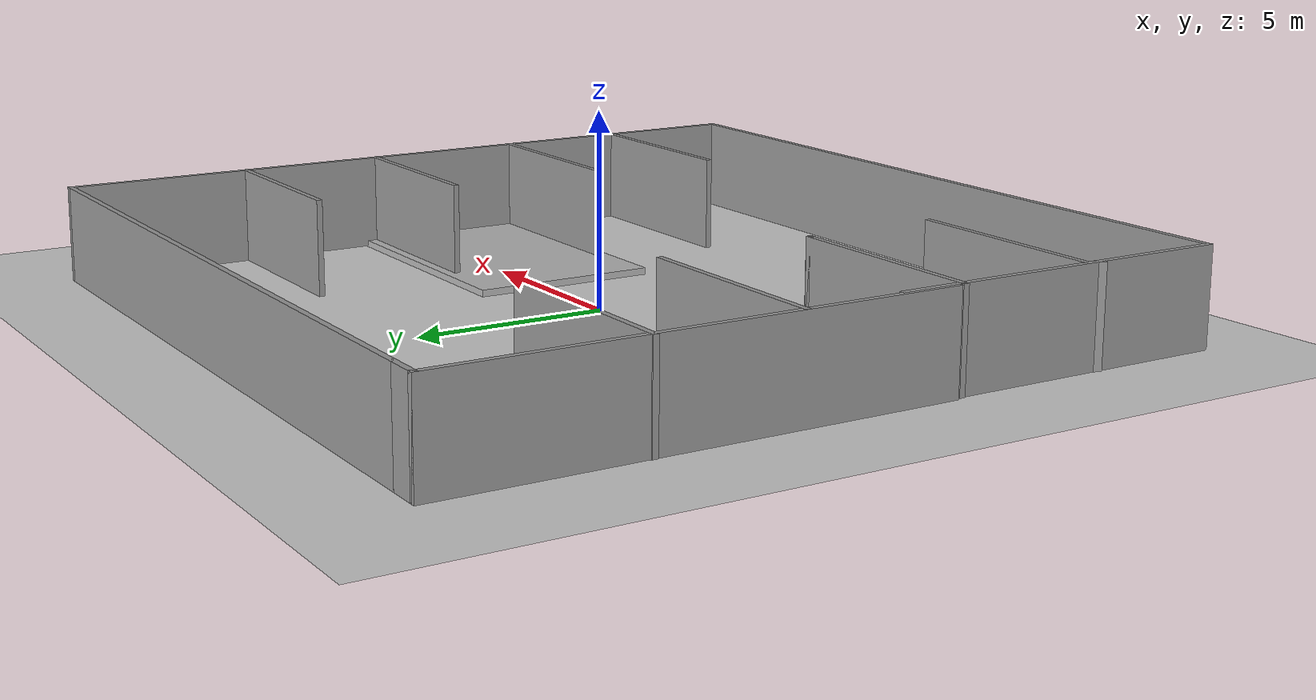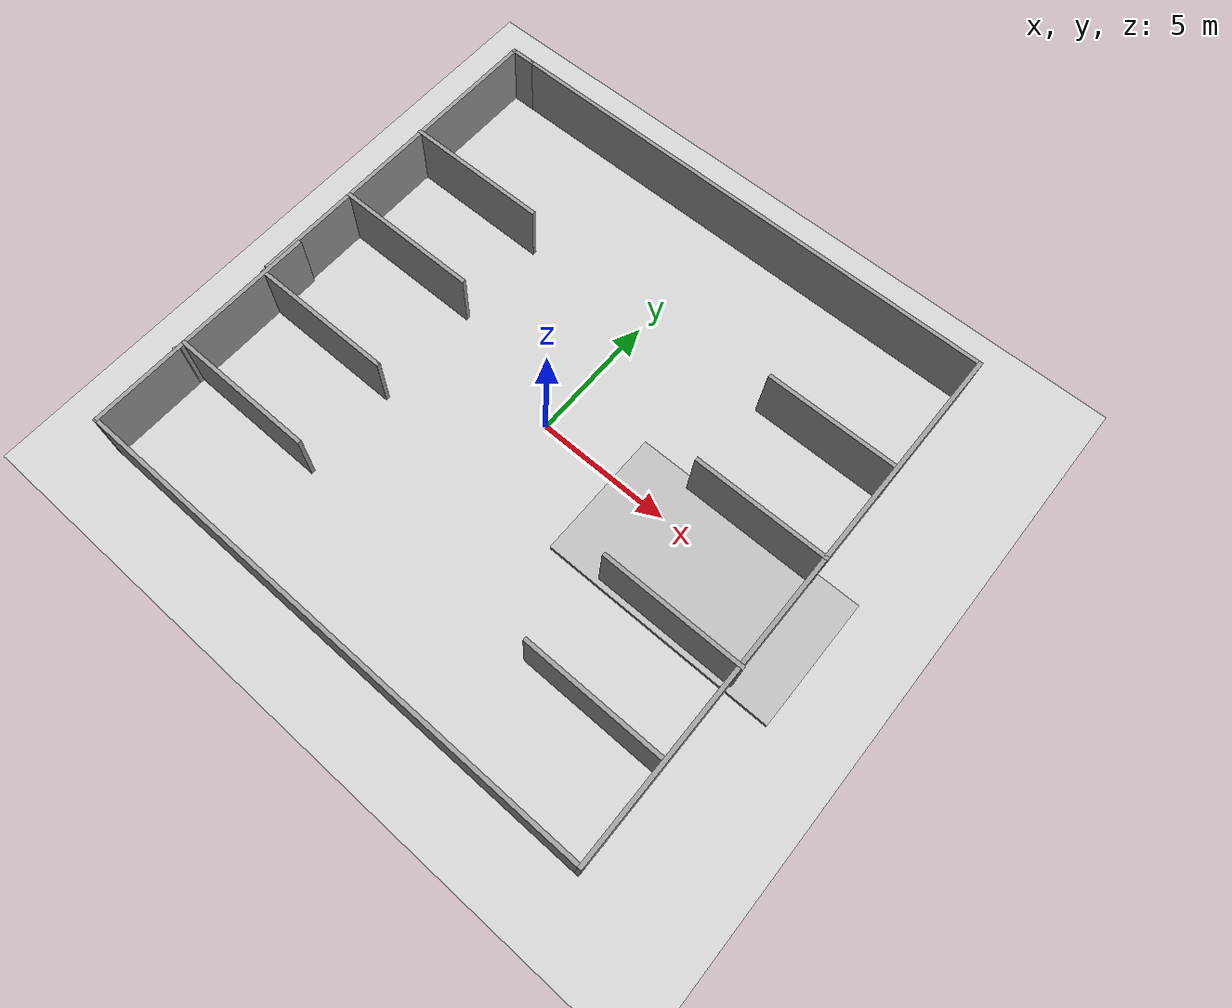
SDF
<sdf version="1.7">
 <world name="default">
  <model name="ground_plane">
   <static>1</static>
   <link name="link">
    <collision name="collision">
     <geometry><plane><normal>0 0 1</normal><size>100 100</size></plane></geometry>
     <surface><friction><ode><mu>100</mu><mu2>50</mu2></ode></friction></surface>
    </collision>
    <visual name="visual">
     <cast_shadows>0</cast_shadows>
     <geometry><plane><normal>0 0 1</normal><size>100 100</size></plane></geometry>
     <material>
      <script><uri>file://media/materials/scripts/gazebo.material</uri><name>Gazebo/Grey</name></script>
     </material>
    </visual>
   </link>
  </model>
  <light name="sun" type="directional">
   <pose>0 0 10 0 -0 0</pose>
   <diffuse>0.8 0.8 0.8 1</diffuse>
   <specular>0.2 0.2 0.2 1</specular>
   <attenuation>
    <range>1000</range>
    <constant>0.9</constant>
    <linear>0.01</linear>
    <quadratic>0.001</quadratic>
   </attenuation>
   <direction>-0.5 0.1 -0.9</direction>
   <spot><inner_angle>0</inner_angle><outer_angle>0</outer_angle><falloff>0</falloff></spot>
  </light>
  <scene><shadows>0</shadows><ambient>0.4 0.4 0.4 1</ambient><background>0.7 0.7 0.7 1</background></scene>
  <physics type="ode">
   <real_time_update_rate>1000</real_time_update_rate>
   <max_step_size>0.001</max_step_size>
   <real_time_factor>1</real_time_factor>
   <ode>
    <solver>
     <type>quick</type>
     <iters>150</iters>
     <precon_iters>0</precon_iters>
     <sor>1.4</sor>
     <use_dynamic_moi_rescaling>1</use_dynamic_moi_rescaling>
    </solver>
    <constraints>
     <cfm>1e-05</cfm>
     <erp>0.2</erp>
     <contact_max_correcting_vel>2000</contact_max_correcting_vel>
     <contact_surface_layer>0.01</contact_surface_layer>
    </constraints>
   </ode>
  </physics>
  <gravity>0 0 -9.8</gravity>
  <magnetic_field>6e-06 2.3e-05 -4.2e-05</magnetic_field>
  <atmosphere type="adiabatic"/>
  <spherical_coordinates>
   <surface_model>EARTH_WGS84</surface_model>
   <latitude_deg>0</latitude_deg>
   <longitude_deg>0</longitude_deg>
   <elevation>0</elevation>
   <heading_deg>0</heading_deg>
  </spherical_coordinates>
  <model name="otopark">
   <pose>-0.2096 0.02979 0 0 -0 0</pose>
   <link name="Wall_12">
    <collision name="Wall_12_Collision">
     <geometry><box><size>0.25 0.15 2.5</size></box></geometry>
     <pose>0 0 1.25 0 -0 0</pose>
    </collision>
    <visual name="Wall_12_Visual">
     <pose>0 0 1.25 0 -0 0</pose>
     <geometry><box><size>0.25 0.15 2.5</size></box></geometry>
     <material>
      <script><uri>file://media/materials/scripts/gazebo.material</uri><name>Gazebo/Grey</name></script>
      <ambient>0 0 0 1</ambient>
     </material>
     <meta><layer>0</layer></meta>
    </visual>
    <pose>-10.0362 -6.6877 0 0 -0 1.309</pose>
   </link>
   <link name="Wall_13">
    <collision name="Wall_13_Collision">
     <geometry><box><size>5.5 0.15 2.5</size></box></geometry>
     <pose>0 0 1.25 0 -0 0</pose>
    </collision>
    <visual name="Wall_13_Visual">
     <pose>0 0 1.25 0 -0 0</pose>
     <geometry><box><size>5.5 0.15 2.5</size></box></geometry>
     <material>
      <script><uri>file://media/materials/scripts/gazebo.material</uri><name>Gazebo/Grey</name></script>
      <ambient>1 1 1 1</ambient>
     </material>
     <meta><layer>0</layer></meta>
    </visual>
    <pose>-7.32764 -6.3638 0 0 -0 0</pose>
   </link>
   <link name="Wall_17">
    <collision name="Wall_17_Collision">
     <geometry><box><size>5.5 0.15 2.5</size></box></geometry>
     <pose>0 0 1.25 0 -0 0</pose>
    </collision>
    <visual name="Wall_17_Visual">
     <pose>0 0 1.25 0 -0 0</pose>
     <geometry><box><size>5.5 0.15 2.5</size></box></geometry>
     <material>
      <script><uri>file://media/materials/scripts/gazebo.material</uri><name>Gazebo/Grey</name></script>
      <ambient>1 1 1 1</ambient>
     </material>
     <meta><layer>0</layer></meta>
    </visual>
    <pose>-7.37417 -2.78146 0 0 -0 0</pose>
   </link>
   <link name="Wall_18">
    <collision name="Wall_18_Collision">
     <geometry><box><size>0.16 0.15 2.5</size></box></geometry>
     <pose>0 0 1.25 0 -0 0</pose>
    </collision>
    <visual name="Wall_18_Visual">
     <pose>0 0 1.25 0 -0 0</pose>
     <geometry><box><size>0.16 0.15 2.5</size></box></geometry>
     <material>
      <script><uri>file://media/materials/scripts/gazebo.material</uri><name>Gazebo/Grey</name></script>
      <ambient>0 0 0 1</ambient>
     </material>
     <meta><layer>0</layer></meta>
    </visual>
    <pose>-4.69416 -2.78146 0 0 -0 0</pose>
   </link>
   <link name="Wall_19">
    <collision name="Wall_19_Collision">
     <geometry><box><size>5.5 0.15 2.5</size></box></geometry>
     <pose>0 0 1.25 0 -0 0</pose>
    </collision>
    <visual name="Wall_19_Visual">
     <pose>0 0 1.25 0 -0 0</pose>
     <geometry><box><size>5.5 0.15 2.5</size></box></geometry>
     <material>
      <script><uri>file://media/materials/scripts/gazebo.material</uri><name>Gazebo/Grey</name></script>
      <ambient>1 1 1 1</ambient>
     </material>
     <meta><layer>0</layer></meta>
    </visual>
    <pose>-7.42069 1.35917 0 0 -0 0</pose>
   </link>
   <link name="Wall_22">
    <collision name="Wall_22_Collision">
     <geometry><box><size>5.5 0.15 2.5</size></box></geometry>
     <pose>0 0 1.25 0 -0 0</pose>
    </collision>
    <visual name="Wall_22_Visual">
     <pose>0 0 1.25 0 -0 0</pose>
     <geometry><box><size>5.5 0.15 2.5</size></box></geometry>
     <material>
      <script><uri>file://media/materials/scripts/gazebo.material</uri><name>Gazebo/Grey</name></script>
      <ambient>1 1 1 1</ambient>
     </material>
     <meta><layer>0</layer></meta>
    </visual>
    <pose>-7.46721 4.98803 0 0 -0 0</pose>
   </link>
   <link name="Wall_24">
    <collision name="Wall_24_Collision">
     <geometry><box><size>5 0.15 2.5</size></box></geometry>
     <pose>0 0 1.25 0 -0 0</pose>
    </collision>
    <visual name="Wall_24_Visual">
     <pose>0 0 1.25 0 -0 0</pose>
     <geometry><box><size>5 0.15 2.5</size></box></geometry>
     <material>
      <script><uri>file://media/materials/scripts/gazebo.material</uri><name>Gazebo/Grey</name></script>
      <ambient>1 1 1 1</ambient>
     </material>
     <meta><layer>0</layer></meta>
    </visual>
    <pose>7.67069 5.22065 0 0 -0 3.14159</pose>
   </link>
   <link name="Wall_26">
    <collision name="Wall_26_Collision">
     <geometry><box><size>5 0.15 2.5</size></box></geometry>
     <pose>0 0 1.25 0 -0 0</pose>
    </collision>
    <visual name="Wall_26_Visual">
     <pose>0 0 1.25 0 -0 0</pose>
     <geometry><box><size>5 0.15 2.5</size></box></geometry>
     <material>
      <script><uri>file://media/materials/scripts/gazebo.material</uri><name>Gazebo/Grey</name></script>
      <ambient>1 1 1 1</ambient>
     </material>
     <meta><layer>0</layer></meta>
    </visual>
    <pose>7.67069 1.35917 0 0 -0 3.14159</pose>
   </link>
   <link name="Wall_28">
    <collision name="Wall_28_Collision">
     <geometry><box><size>5.25 0.15 2.5</size></box></geometry>
     <pose>0 0 1.25 0 -0 0</pose>
    </collision>
    <visual name="Wall_28_Visual">
     <pose>0 0 1.25 0 -0 0</pose>
     <geometry><box><size>5.25 0.15 2.5</size></box></geometry>
     <material>
      <script><uri>file://media/materials/scripts/gazebo.material</uri><name>Gazebo/Grey</name></script>
      <ambient>1 1 1 1</ambient>
     </material>
     <meta><layer>0</layer></meta>
    </visual>
    <pose>7.59221 -2.92103 0 0 -0 3.14159</pose>
   </link>
   <link name="Wall_30">
    <collision name="Wall_30_Collision">
     <geometry><box><size>5.25 0.15 2.5</size></box></geometry>
     <pose>0 0 1.25 0 -0 0</pose>
    </collision>
    <visual name="Wall_30_Visual">
     <pose>0 0 1.25 0 -0 0</pose>
     <geometry><box><size>5.25 0.15 2.5</size></box></geometry>
     <material>
      <script><uri>file://media/materials/scripts/gazebo.material</uri><name>Gazebo/Grey</name></script>
      <ambient>1 1 1 1</ambient>
     </material>
     <meta><layer>0</layer></meta>
    </visual>
    <pose>7.49917 -6.41033 0 0 -0 3.14159</pose>
   </link>
   <link name="Wall_4">
    <collision name="Wall_4_Collision">
     <geometry><box><size>9 0.15 2.5</size></box></geometry>
     <pose>0 0 1.25 0 -0 0</pose>
    </collision>
    <visual name="Wall_4_Visual">
     <pose>0 0 1.25 0 -0 0</pose>
     <geometry><box><size>9 0.15 2.5</size></box></geometry>
     <material>
      <script><uri>file://media/materials/scripts/gazebo.material</uri><name>Gazebo/Grey</name></script>
      <ambient>1 1 1 1</ambient>
     </material>
     <meta><layer>0</layer></meta>
    </visual>
    <pose>-10.0123 -5.625 0 0 -0 -1.5708</pose>
   </link>
   <link name="Wall_5">
    <collision name="Wall_5_Collision">
     <geometry><box><size>20.25 0.15 2.5</size></box></geometry>
     <pose>0 0 1.25 0 -0 0</pose>
    </collision>
    <visual name="Wall_5_Visual">
     <pose>0 0 1.25 0 -0 0</pose>
     <geometry><box><size>20.25 0.15 2.5</size></box></geometry>
     <material>
      <script><uri>file://media/materials/scripts/gazebo.material</uri><name>Gazebo/Grey</name></script>
      <ambient>1 1 1 1</ambient>
     </material>
     <meta><layer>0</layer></meta>
    </visual>
    <pose>0.037737 -10.05 0 0 -0 0</pose>
   </link>
   <link name="Wall_6">
    <collision name="Wall_6_Collision">
     <geometry><box><size>20.25 0.15 2.5</size></box></geometry>
     <pose>0 0 1.25 0 -0 0</pose>
    </collision>
    <visual name="Wall_6_Visual">
     <pose>0 0 1.25 0 -0 0</pose>
     <geometry><box><size>20.25 0.15 2.5</size></box></geometry>
     <material>
      <script><uri>file://media/materials/scripts/gazebo.material</uri><name>Gazebo/Grey</name></script>
      <ambient>1 1 1 1</ambient>
     </material>
     <meta><layer>0</layer></meta>
    </visual>
    <pose>10.0877 0 0 0 -0 1.5708</pose>
   </link>
   <link name="Wall_7">
    <collision name="Wall_7_Collision">
     <geometry><box><size>19.5 0.15 2.5</size></box></geometry>
     <pose>0 0 1.25 0 -0 0</pose>
    </collision>
    <visual name="Wall_7_Visual">
     <pose>0 0 1.25 0 -0 0</pose>
     <geometry><box><size>19.5 0.15 2.5</size></box></geometry>
     <material>
      <script><uri>file://media/materials/scripts/gazebo.material</uri><name>Gazebo/Grey</name></script>
      <ambient>1 1 1 1</ambient>
     </material>
     <meta><layer>0</layer></meta>
    </visual>
    <pose>0.412737 10.05 0 0 -0 3.14159</pose>
   </link>
   <link name="Wall_8">
    <collision name="Wall_8_Collision">
     <geometry><box><size>1 0.15 2.5</size></box></geometry>
     <pose>0 0 1.25 0 -0 0</pose>
    </collision>
    <visual name="Wall_8_Visual">
     <pose>0 0 1.25 0 -0 0</pose>
     <geometry><box><size>1 0.15 2.5</size></box></geometry>
     <material>
      <script><uri>file://media/materials/scripts/gazebo.material</uri><name>Gazebo/Grey</name></script>
      <ambient>1 1 1 1</ambient>
     </material>
     <meta><layer>0</layer></meta>
    </visual>
    <pose>-9.68726 10.05 0 0 -0 3.14159</pose>
   </link>
   <link name="Wall_9">
    <collision name="Wall_9_Collision">
     <geometry><box><size>12.75 0.15 2.5</size></box></geometry>
     <pose>0 0 1.25 0 -0 0</pose>
    </collision>
    <visual name="Wall_9_Visual">
     <pose>0 0 1.25 0 -0 0</pose>
     <geometry><box><size>12.75 0.15 2.5</size></box></geometry>
     <material>
      <script><uri>file://media/materials/scripts/gazebo.material</uri><name>Gazebo/Grey</name></script>
      <ambient>1 1 1 1</ambient>
     </material>
     <meta><layer>0</layer></meta>
    </visual>
    <pose>-10.1123 3.75 0 0 -0 -1.5708</pose>
   </link>
   <static>1</static>
  </model>
  <model name="Fire">
   <static>1</static>
   <link name="link">
    <visual name="visual"><geometry><mesh><uri>model://fire/meshes/fire0.dae</uri></mesh></geometry></visual>
   </link>
   <pose>7.21137 -0.720813 0 0 -0 0</pose>
  </model>
 </world>
</sdf>
